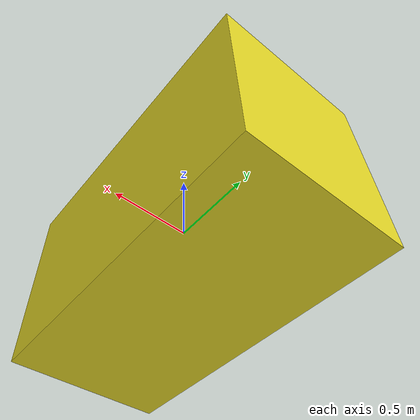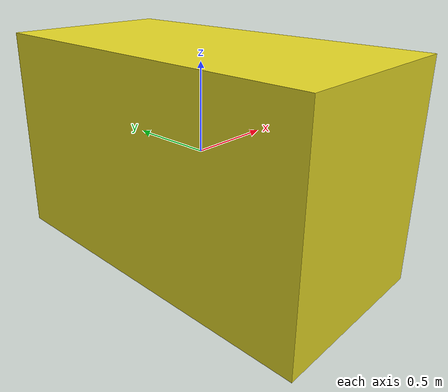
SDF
<?xml version='1.0'?>
<sdf version='1.6'>
  <model name='fhw-adas_guidebox'>
    <static>0</static>
    <link name='link'>
      <gravity>1</gravity>
      <inertial>
        <mass>1</mass>
        <inertia>
          <ixx>0.166667</ixx>
          <ixy>0</ixy>
          <ixz>0</ixz>
          <iyy>0.166667</iyy>
          <iyz>0</iyz>
          <izz>0.166667</izz>
        </inertia>
      </inertial>
      <collision name='collision'>
        <geometry>
          <box>
            <size>1 2 1.2</size>
          </box>
        </geometry>
        <max_contacts>10</max_contacts>
      </collision>
      <visual name='visual'>
        <geometry>
          <box>
            <size>1 2 1.2</size>
          </box>
        </geometry>
        <material>
          <script>
            <name>Gazebo/DarkYellow</name>
            <uri>file://media/materials/scripts/gazebo.material</uri>
          </script>
        </material>
      </visual>
    </link>
  </model>
</sdf>
